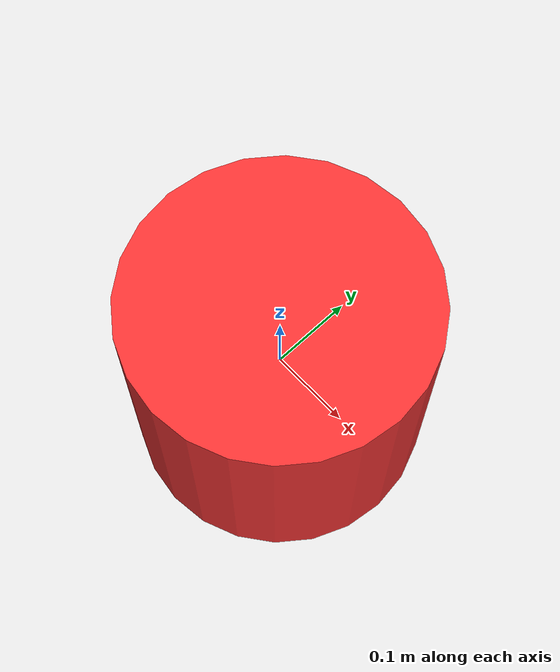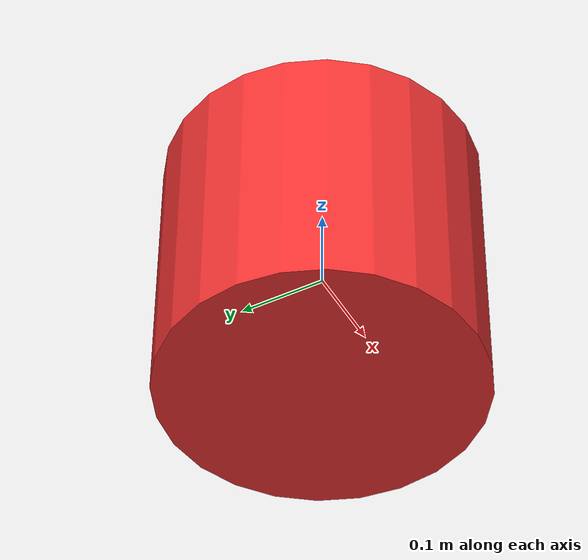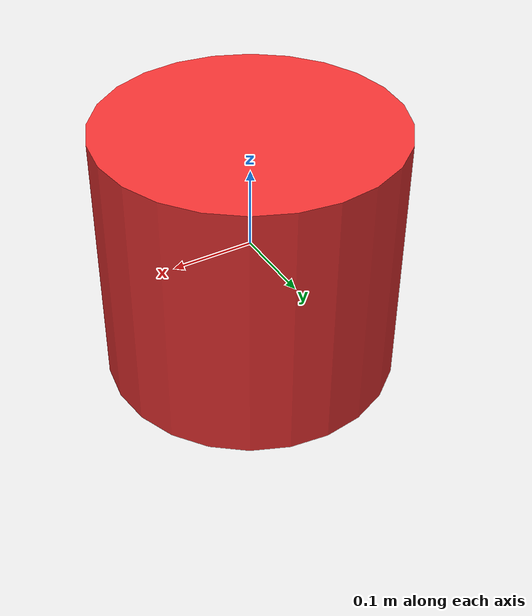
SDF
<?xml version="1.0"?>
<sdf version="1.10">
  <model name="ghost_simple">
    <static>false</static>
    <link name="link">
      <gravity>false</gravity>
      <collision name="collision">
        <geometry>
          <cylinder>
            <radius>0.18</radius>
            <length>0.32</length>
          </cylinder>
        </geometry>
      </collision>
      <visual name="visual">
        <geometry>
          <cylinder>
            <radius>0.18</radius>
            <length>0.32</length>
          </cylinder>
        </geometry>
        <material>
          <ambient>0.95 0.20 0.20 1.0</ambient>
          <diffuse>0.95 0.20 0.20 1.0</diffuse>
        </material>
      </visual>
    </link>
  </model>
</sdf>
